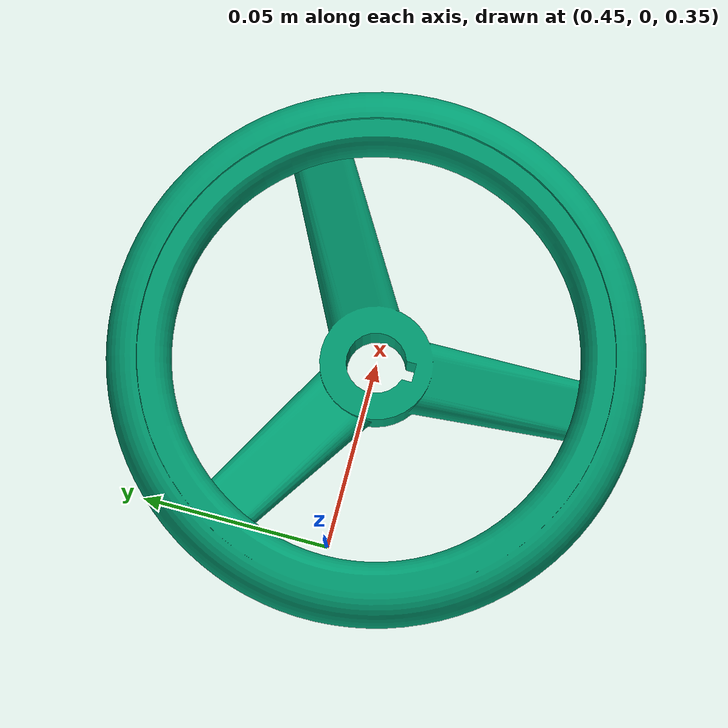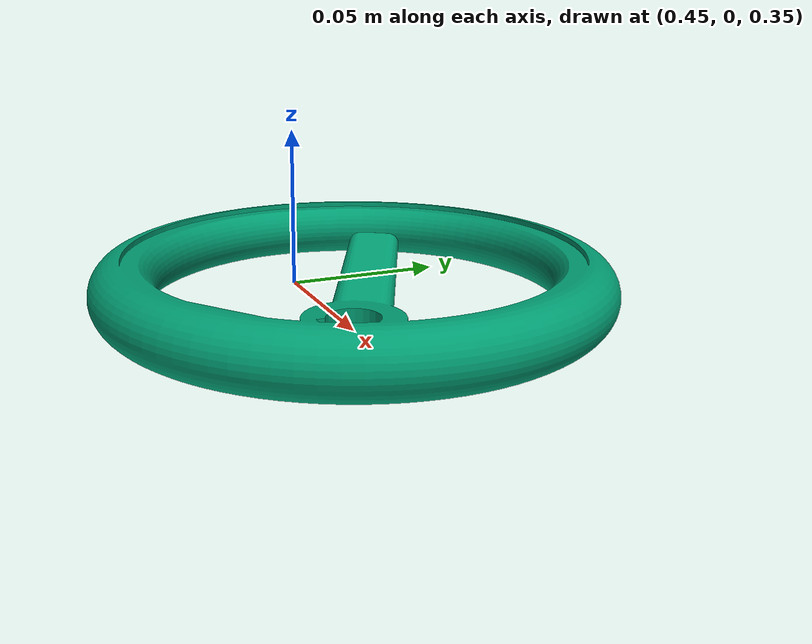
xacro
<?xml version="1.0" encoding="utf-8"?>
<robot name="valve" xmlns:xacro="http://www.ros.org/wiki/xacro">
    <xacro:arg name="resource_prefix" default=""/>
    <xacro:arg name="resource_directory" default="$(find mppi_manipulation)/data/meshes"/>
    <link name="world"/>
    <joint name="fixed" type="fixed">
        <parent link="world"/>
        <child link="valve_base"/>
        <origin xyz="0.5 0.0 0.335" rpy="1.57 0 0"/>
    </joint>

    <link name="valve_base"/>

    <link name="handle_link">
        <inertial>
            <origin rpy="0 0 0" xyz="0 0 0"/>
            <mass value="0.1"/>
            <inertia ixx="0.001" ixy="0" ixz="0" iyy="0.001" iyz="0" izz="0.001"/>
        </inertial>
        <visual>
            <origin rpy="0 0 0" xyz="0 0 0"/>
            <geometry>
                <mesh filename="$(arg resource_prefix)$(arg resource_directory)/valve_visual.obj"/>
            </geometry>
        </visual>
        <collision>
            <origin rpy="0 0 0" xyz="0 0 0"/>
	    <geometry>
                <mesh  filename="$(arg resource_prefix)$(arg resource_directory)/valve_collision.obj"/>
            </geometry>
        </collision>
    </link>

    <joint name="articulation_joint" type="revolute">
        <parent link="valve_base"/>
        <child link="handle_link"/>
        <origin xyz="0 0 0" rpy="0 0 0"/>
        <dynamics damping="1.0" friction="2.0"/>
        <axis xyz="0 1 0"/>
        <limit upper="3.14" lower="3.14" effort="100" velocity="1.0"/>
    </joint>
</robot>
